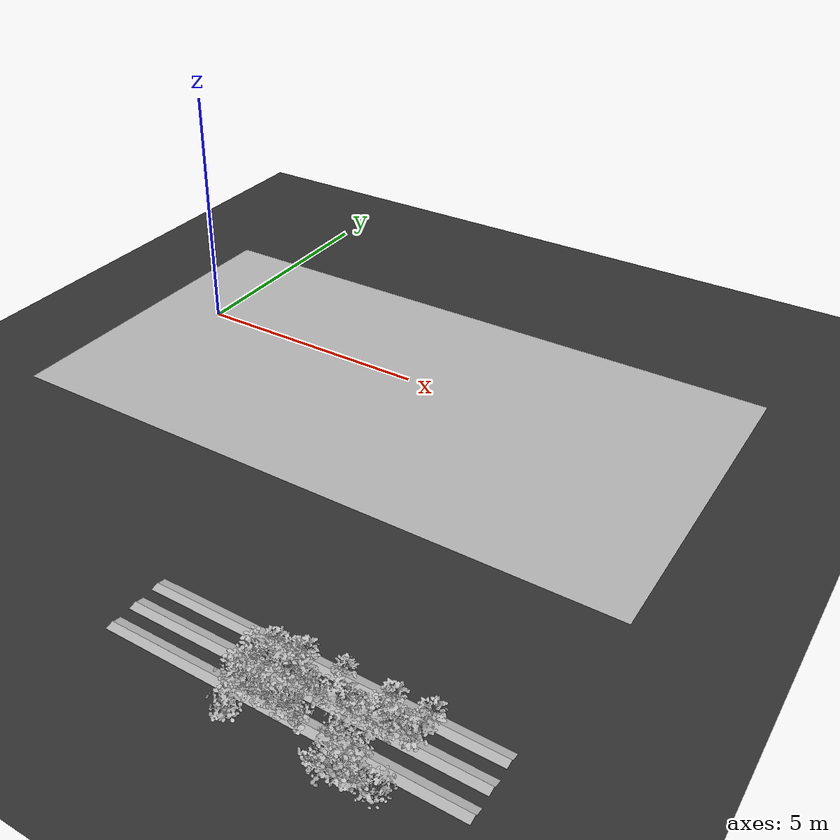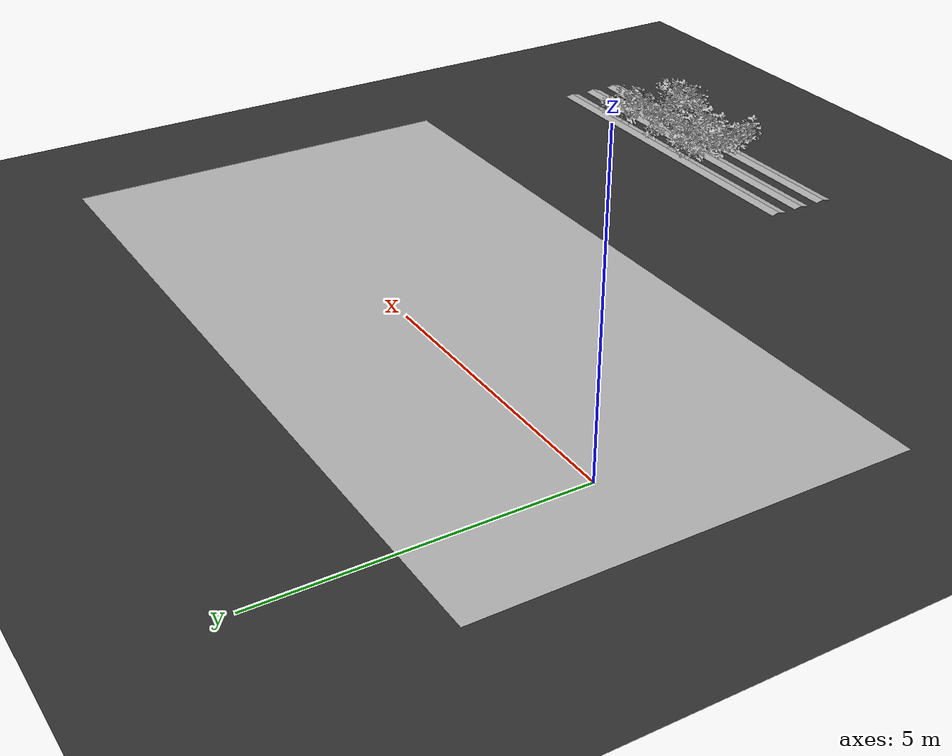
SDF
<sdf version="1.7">
 <world name="default">
  <model name="ground_plane">
   <static>1</static>
   <link name="link">
    <collision name="collision">
     <geometry><plane><normal>0 0 1</normal><size>100 100</size></plane></geometry>
     <surface>
      <contact><collide_bitmask>65535</collide_bitmask></contact>
      <friction><ode><mu>100</mu><mu2>50</mu2></ode></friction>
     </surface>
    </collision>
    <visual name="visual">
     <cast_shadows>0</cast_shadows>
     <geometry><plane><normal>0 0 1</normal><size>100 100</size></plane></geometry>
     <material>
      <ambient>0.2 0.2 0.2 1.0</ambient>
      <diffuse>0.2 0.2 0.2 1.0</diffuse>
      <specular>0.2 0.2 0.2 1.0</specular>
      <emissive>0.2 0.2 0.2 1.0</emissive>
     </material>
    </visual>
   </link>
  </model>
  <model name="ground">
   <pose>5 -0.5 0.01  3.141592654 0 0</pose>
   <static>true</static>
   <link name="body">
    <visual name="visual">
     <cast_shadows>0</cast_shadows>
     <geometry>
      <mesh><uri>file:///home/ifcosta/catkin_ws/src/cnn_line/worlds/models/ground.obj</uri></mesh>
     </geometry>
    </visual>
   </link>
  </model>
  <model name="plt_20024">
   <pose>7.23 -7.3 0.0149 0.0 0.0 -0.090248</pose>
   <static>true</static>
   <link name="body">
    <visual name="visual">
     <geometry>
      <mesh><uri>file:///home/ifcosta/catkin_ws/src/cnn_line/worlds/models/plant21.obj</uri></mesh>
     </geometry>
    </visual>
   </link>
  </model>
  <model name="plt_20025">
   <pose>7.53 -7.29 0.0139 0.0 0.0 -2.0363</pose>
   <static>true</static>
   <link name="body">
    <visual name="visual">
     <geometry>
      <mesh><uri>file:///home/ifcosta/catkin_ws/src/cnn_line/worlds/models/plant21.obj</uri></mesh>
     </geometry>
    </visual>
   </link>
  </model>
  <model name="plt_20026">
   <pose>7.75 -7.27 0.0156 0.0 0.0 1.0659</pose>
   <static>true</static>
   <link name="body">
    <visual name="visual">
     <geometry>
      <mesh><uri>file:///home/ifcosta/catkin_ws/src/cnn_line/worlds/models/plant22.obj</uri></mesh>
     </geometry>
    </visual>
   </link>
  </model>
  <model name="plt_20028">
   <pose>8.43 -7.24 0.0144 0.0 0.0 1.2912</pose>
   <static>true</static>
   <link name="body">
    <visual name="visual">
     <geometry>
      <mesh><uri>file:///home/ifcosta/catkin_ws/src/cnn_line/worlds/models/plant21.obj</uri></mesh>
     </geometry>
    </visual>
   </link>
  </model>
  <model name="plt_20031">
   <pose>9.29 -7.28 0.0153 0.0 0.0 0.3902</pose>
   <static>true</static>
   <link name="body">
    <visual name="visual">
     <geometry>
      <mesh><uri>file:///home/ifcosta/catkin_ws/src/cnn_line/worlds/models/plant22.obj</uri></mesh>
     </geometry>
    </visual>
   </link>
  </model>
  <model name="plt_20033">
   <pose>9.9 -7.25 0.0164 0.0 0.0 0.76788</pose>
   <static>true</static>
   <link name="body">
    <visual name="visual">
     <geometry>
      <mesh><uri>file:///home/ifcosta/catkin_ws/src/cnn_line/worlds/models/plant22.obj</uri></mesh>
     </geometry>
    </visual>
   </link>
  </model>
  <model name="slope_834">
   <pose>8.0 -7.25 -0.005 0.0 0.0 0.0</pose>
   <static>true</static>
   <link name="body">
    <visual name="visual">
     <geometry>
      <mesh><uri>file:///home/ifcosta/catkin_ws/src/cnn_line/worlds/models/slope.obj</uri></mesh>
     </geometry>
    </visual>
   </link>
  </model>
  <model name="slope_934">
   <pose>8.0 -7.25 -0.005 0.0 0.0 3.1416</pose>
   <static>true</static>
   <link name="body">
    <visual name="visual">
     <geometry>
      <mesh><uri>file:///home/ifcosta/catkin_ws/src/cnn_line/worlds/models/slope.obj</uri></mesh>
     </geometry>
    </visual>
   </link>
  </model>
  <model name="plt_30127">
   <pose>7.46 -8.74 0.0118 0.0 0.0 -0.52378</pose>
   <static>true</static>
   <link name="body">
    <visual name="visual">
     <geometry>
      <mesh><uri>file:///home/ifcosta/catkin_ws/src/cnn_line/worlds/models/plant36.obj</uri></mesh>
     </geometry>
    </visual>
   </link>
  </model>
  <model name="plt_30132">
   <pose>8.96 -8.72 0.0173 0.0 0.0 1.6306</pose>
   <static>true</static>
   <link name="body">
    <visual name="visual">
     <geometry>
      <mesh><uri>file:///home/ifcosta/catkin_ws/src/cnn_line/worlds/models/plant34.obj</uri></mesh>
     </geometry>
    </visual>
   </link>
  </model>
  <model name="plt_30133">
   <pose>9.35 -8.75 0.0179 0.0 0.0 1.2062</pose>
   <static>true</static>
   <link name="body">
    <visual name="visual">
     <geometry>
      <mesh><uri>file:///home/ifcosta/catkin_ws/src/cnn_line/worlds/models/plant30.obj</uri></mesh>
     </geometry>
    </visual>
   </link>
  </model>
  <model name="plt_30134">
   <pose>9.6 -8.72 0.0144 0.0 0.0 -0.66504</pose>
   <static>true</static>
   <link name="body">
    <visual name="visual">
     <geometry>
      <mesh><uri>file:///home/ifcosta/catkin_ws/src/cnn_line/worlds/models/plant36.obj</uri></mesh>
     </geometry>
    </visual>
   </link>
  </model>
  <model name="plt_30135">
   <pose>9.91 -8.74 0.0159 0.0 0.0 -1.0914</pose>
   <static>true</static>
   <link name="body">
    <visual name="visual">
     <geometry>
      <mesh><uri>file:///home/ifcosta/catkin_ws/src/cnn_line/worlds/models/plant32.obj</uri></mesh>
     </geometry>
    </visual>
   </link>
  </model>
  <model name="plt_30160">
   <pose>7.22 -8.21 0.012 0.0 0.0 -0.78652</pose>
   <static>true</static>
   <link name="body">
    <visual name="visual">
     <geometry>
      <mesh><uri>file:///home/ifcosta/catkin_ws/src/cnn_line/worlds/models/plant30.obj</uri></mesh>
     </geometry>
    </visual>
   </link>
  </model>
  <model name="plt_30161">
   <pose>7.48 -8.26 0.013 0.0 0.0 0.52503</pose>
   <static>true</static>
   <link name="body">
    <visual name="visual">
     <geometry>
      <mesh><uri>file:///home/ifcosta/catkin_ws/src/cnn_line/worlds/models/plant30.obj</uri></mesh>
     </geometry>
    </visual>
   </link>
  </model>
  <model name="plt_30162">
   <pose>7.79 -8.25 0.0152 0.0 0.0 -1.15</pose>
   <static>true</static>
   <link name="body">
    <visual name="visual">
     <geometry>
      <mesh><uri>file:///home/ifcosta/catkin_ws/src/cnn_line/worlds/models/plant30.obj</uri></mesh>
     </geometry>
    </visual>
   </link>
  </model>
  <model name="plt_30163">
   <pose>8.12 -8.27 0.0146 0.0 0.0 -0.89398</pose>
   <static>true</static>
   <link name="body">
    <visual name="visual">
     <geometry>
      <mesh><uri>file:///home/ifcosta/catkin_ws/src/cnn_line/worlds/models/plant30.obj</uri></mesh>
     </geometry>
    </visual>
   </link>
  </model>
  <model name="plt_30164">
   <pose>8.41 -8.24 0.0141 0.0 0.0 1.0499</pose>
   <static>true</static>
   <link name="body">
    <visual name="visual">
     <geometry>
      <mesh><uri>file:///home/ifcosta/catkin_ws/src/cnn_line/worlds/models/plant33.obj</uri></mesh>
     </geometry>
    </visual>
   </link>
  </model>
  <model name="plt_30166">
   <pose>9.0 -8.28 0.0137 0.0 0.0 -1.0847</pose>
   <static>true</static>
   <link name="body">
    <visual name="visual">
     <geometry>
      <mesh><uri>file:///home/ifcosta/catkin_ws/src/cnn_line/worlds/models/plant36.obj</uri></mesh>
     </geometry>
    </visual>
   </link>
  </model>
  <model name="plt_30167">
   <pose>9.36 -8.25 0.0137 0.0 0.0 0.71836</pose>
   <static>true</static>
   <link name="body">
    <visual name="visual">
     <geometry>
      <mesh><uri>file:///home/ifcosta/catkin_ws/src/cnn_line/worlds/models/plant31.obj</uri></mesh>
     </geometry>
    </visual>
   </link>
  </model>
  <model name="slope_1370">
   <pose>8.0 -8.25 -0.005 0.0 0.0 0.0</pose>
   <static>true</static>
   <link name="body">
    <visual name="visual">
     <geometry>
      <mesh><uri>file:///home/ifcosta/catkin_ws/src/cnn_line/worlds/models/slope.obj</uri></mesh>
     </geometry>
    </visual>
   </link>
  </model>
  <model name="slope_1470">
   <pose>8.0 -8.25 -0.005 0.0 0.0 3.1416</pose>
   <static>true</static>
   <link name="body">
    <visual name="visual">
     <geometry>
      <mesh><uri>file:///home/ifcosta/catkin_ws/src/cnn_line/worlds/models/slope.obj</uri></mesh>
     </geometry>
    </visual>
   </link>
  </model>
  <model name="plt_30194">
   <pose>7.22 -7.78 0.0151 0.0 0.0 -0.64454</pose>
   <static>true</static>
   <link name="body">
    <visual name="visual">
     <geometry>
      <mesh><uri>file:///home/ifcosta/catkin_ws/src/cnn_line/worlds/models/plant30.obj</uri></mesh>
     </geometry>
    </visual>
   </link>
  </model>
  <model name="plt_30195">
   <pose>7.47 -7.78 0.0141 0.0 0.0 0.37808</pose>
   <static>true</static>
   <link name="body">
    <visual name="visual">
     <geometry>
      <mesh><uri>file:///home/ifcosta/catkin_ws/src/cnn_line/worlds/models/plant32.obj</uri></mesh>
     </geometry>
    </visual>
   </link>
  </model>
  <model name="plt_30196">
   <pose>7.83 -7.75 0.0165 0.0 0.0 -1.1973</pose>
   <static>true</static>
   <link name="body">
    <visual name="visual">
     <geometry>
      <mesh><uri>file:///home/ifcosta/catkin_ws/src/cnn_line/worlds/models/plant33.obj</uri></mesh>
     </geometry>
    </visual>
   </link>
  </model>
  <model name="plt_30197">
   <pose>8.07 -7.74 0.0148 0.0 0.0 -0.45358</pose>
   <static>true</static>
   <link name="body">
    <visual name="visual">
     <geometry>
      <mesh><uri>file:///home/ifcosta/catkin_ws/src/cnn_line/worlds/models/plant36.obj</uri></mesh>
     </geometry>
    </visual>
   </link>
  </model>
  <model name="plt_30198">
   <pose>8.35 -7.74 0.0157 0.0 0.0 -0.22856</pose>
   <static>true</static>
   <link name="body">
    <visual name="visual">
     <geometry>
      <mesh><uri>file:///home/ifcosta/catkin_ws/src/cnn_line/worlds/models/plant34.obj</uri></mesh>
     </geometry>
    </visual>
   </link>
  </model>
  <model name="plt_30199">
   <pose>8.73 -7.74 0.0171 0.0 0.0 0.44413</pose>
   <static>true</static>
   <link name="body">
    <visual name="visual">
     <geometry>
      <mesh><uri>file:///home/ifcosta/catkin_ws/src/cnn_line/worlds/models/plant35.obj</uri></mesh>
     </geometry>
    </visual>
   </link>
  </model>
  <model name="plt_30200">
   <pose>9.03 -7.74 0.0139 0.0 0.0 -1.2398</pose>
   <static>true</static>
   <link name="body">
    <visual name="visual">
     <geometry>
      <mesh><uri>file:///home/ifcosta/catkin_ws/src/cnn_line/worlds/models/plant34.obj</uri></mesh>
     </geometry>
    </visual>
   </link>
  </model>
  <model name="plt_30201">
   <pose>9.29 -7.74 0.0139 0.0 0.0 1.1476</pose>
   <static>true</static>
   <link name="body">
    <visual name="visual">
     <geometry>
      <mesh><uri>file:///home/ifcosta/catkin_ws/src/cnn_line/worlds/models/plant32.obj</uri></mesh>
     </geometry>
    </visual>
   </link>
  </model>
  <model name="plt_30202">
   <pose>9.54 -7.77 0.0184 0.0 0.0 0.13177</pose>
   <static>true</static>
   <link name="body">
    <visual name="visual">
     <geometry>
      <mesh><uri>file:///home/ifcosta/catkin_ws/src/cnn_line/worlds/models/plant30.obj</uri></mesh>
     </geometry>
    </visual>
   </link>
  </model>
  <model name="plt_30203">
   <pose>9.89 -7.74 0.014 0.0 0.0 0.85045</pose>
   <static>true</static>
   <link name="body">
    <visual name="visual">
     <geometry>
      <mesh><uri>file:///home/ifcosta/catkin_ws/src/cnn_line/worlds/models/plant30.obj</uri></mesh>
     </geometry>
    </visual>
   </link>
  </model>
  <model name="slope_1404">
   <pose>8.0 -7.75 -0.005 0.0 0.0 0.0</pose>
   <static>true</static>
   <link name="body">
    <visual name="visual">
     <geometry>
      <mesh><uri>file:///home/ifcosta/catkin_ws/src/cnn_line/worlds/models/slope.obj</uri></mesh>
     </geometry>
    </visual>
   </link>
  </model>
  <model name="slope_1504">
   <pose>8.0 -7.75 -0.005 0.0 0.0 3.1416</pose>
   <static>true</static>
   <link name="body">
    <visual name="visual">
     <geometry>
      <mesh><uri>file:///home/ifcosta/catkin_ws/src/cnn_line/worlds/models/slope.obj</uri></mesh>
     </geometry>
    </visual>
   </link>
  </model>
 </world>
</sdf>
